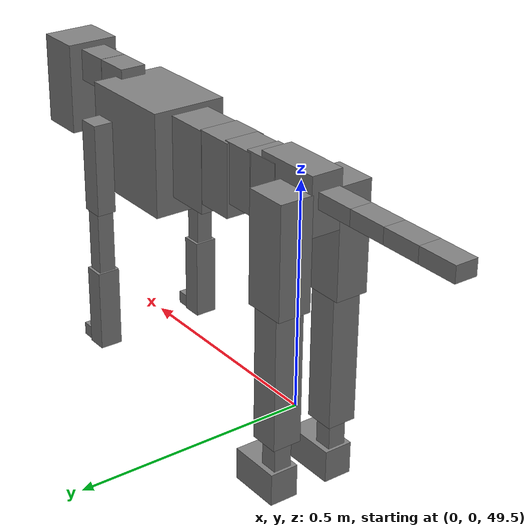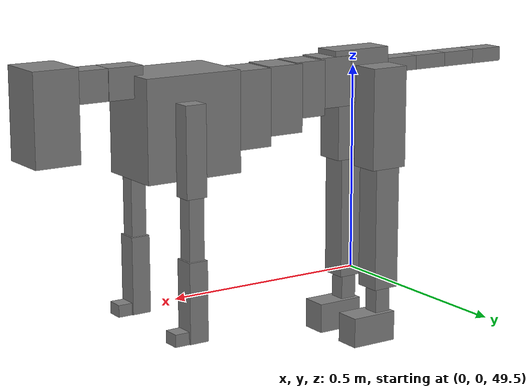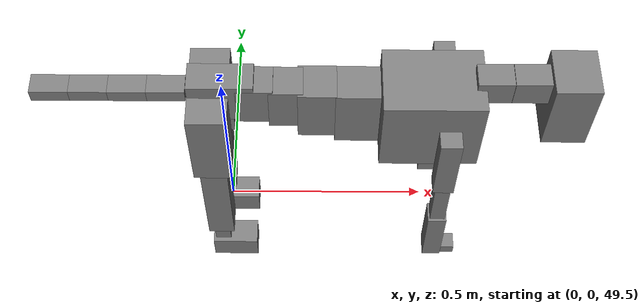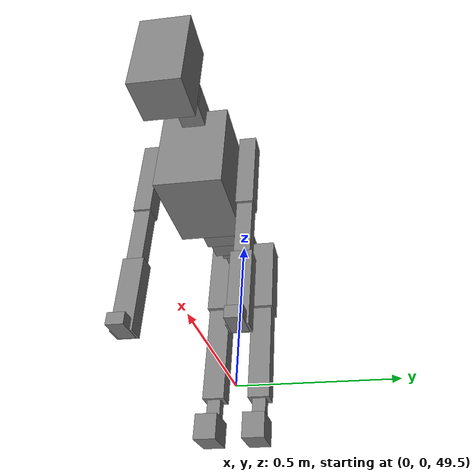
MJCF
<mujoco model="dog">

    <default>
        <joint armature="0.02" stiffness="1" damping="0.2" limited="true"/>
        <geom condim="3" friction="1 0.05 0.05" margin="0.01"/>
        <motor ctrllimited="true" ctrlrange="-1.0 1.0" forcelimited="true" gear="50"/>
    </default>

    <compiler inertiafromgeom="true" angle="radian"/>

    <option timestep="0.016" iterations="50" tolerance="1e-10" solver="Newton" jacobian="dense" cone="pyramidal"/>

    <size nconmax="20000" njmax="60000" nstack="5000000"/>
    <visual>
        <map force="0.1" zfar="30"/>
        <rgba haze="0.15 0.25 0.35 1"/>
        <quality shadowsize="2048"/>
        <global offwidth="800" offheight="800"/>
    </visual>

    <asset>
        <texture type="skybox" builtin="gradient" rgb1="0.3 0.5 0.7" rgb2="0 0 0" width="512" height="512"/>
        <texture name="texplane" type="2d" builtin="checker" rgb1=".2 .3 .4" rgb2=".1 0.15 0.2" width="512" height="512"
                 mark="cross" markrgb=".8 .8 .8"/>
        <texture name="texgeom" type="cube" builtin="flat" mark="cross" width="127" height="1278" rgb1="0.8 0.6 0.4"
                 rgb2="0.8 0.6 0.4" markrgb="1 1 1" random="0.01"/>

        <material name="matplane" reflectance="0.3" texture="texplane" texrepeat="1 1" texuniform="true"/>
        <material name="matgeom" texture="texgeom" texuniform="true" rgba="0.8 0.6 .4 1"/>
    </asset>

    <worldbody>
        <geom name="floor" pos="0 0 0" size="0 0 .25" type="plane" material="matplane" condim="3"/>

        <light directional="false" diffuse=".2 .2 .2" specular="0 0 0" pos="0 0 5" dir="0 0 -1" castshadow="false"/>
        <light mode="targetbodycom" target="torso" directional="false" diffuse=".8 .8 .8" specular="0.3 0.3 0.3"
               pos="0 0 4.0" dir="0 0 -1"/>

        <body name="root" pos="0 0 50">
            <freejoint name="root_1"/>
            <geom type="box" pos="0 0 -0.02" size="0.0774  0.0358  0.063" density="2030"/>

            <body name="spine1" pos="0.054 0 0">
                <joint name="spine1_y" axis="0 1 0" range="0 0.7" limited="true"/>
                <geom type="box" pos="0.02375 0 -0.03" size="0.04375  0.0375  0.05985" density="2030"/>

                <body name="spine2" pos="0.0612 0 0">
                    <joint name="spine2_y" axis="0 1 0" range="-0.15 0.15" limited="true"/>
                    <geom type="box" pos="0.03555  0  -0.04" size="0.04055  0.039  0.06615" density="2030"/>

                    <body name="spine3" pos="0.0730 0 0">
                        <joint name="spine3_y" axis="0 1 0" range="-0.15 0.15" limited="true"/>
                        <geom type="box" pos="0.03555  0  -0.057" size="0.04555  0.0445  0.081" density="2030"/>

                        <body name="spine4" pos="0.0780 0 0">
                            <joint name="spine4_y" axis="0 1 0" range="-0.15 0.15" limited="true"/>
                            <geom type="box" pos="0.05265  0  -0.07" size="0.05265  0.045  0.09135" density="2030"/>

                            <body name="torso" pos="0.1082 0 0">
                                <joint name="torso_y" axis="0 1 0" range="-0.15 0.15" limited="true"/>
                                <geom type="box" pos="0.11925  0  -0.085" size="0.11925  0.085  0.11745"
                                      density="2030"/>

                                <body name="neck1" pos="0.2160  0   0.0180">
                                    <joint name="neck1_y" axis="0 1 0" range="-1.2  -1" limited="true"/>
                                    <geom type="box" pos="0.0423  0  0" size="0.0423  0.03  0.036" density="2325"/>

                                    <body name="neck2" pos="0.0853  0  0">
                                        <joint name="neck2_y" axis="0 1 0" range="0.1  0" limited="true"/>
                                        <geom type="box" pos="0.0423  0  0" size="0.0423  0.03  0.036" density="2325"/>

                                        <body name="head" pos="0.0853  0  0">
                                            <joint name="head_y" axis="0 1 0" range="-0.3  -0.2" limited="true"/>
                                            <geom type="box" pos="0.0531  0  -0.055" size="0.0531  0.06  0.1044"
                                                  density="4030"/>

                                        </body>
                                    </body>
                                </body>

                                <body name="front_shoulder" pos="0.156  0   -0.0480">
                                    <joint name="front_shoulder_y" axis="0 1 0" range="-1 1.5" limited="true"/>
                                    <geom type="box" pos="0 0.13 -0.0771" size="0.0255  0.0218  0.1037" density="1158"/>
                                    <geom type="box" pos="0 -0.13 -0.0771" size="0.0255  0.0218  0.1037"
                                          density="1158"/>

                                    <body name="front_elbow" pos="0  0  -0.1542">
                                        <joint name="front_elbow_y" axis="0 1 0" range="-2 0" limited="true"/>
                                        <geom type="box" pos="0 0.13 -0.0905" size="0.0189  0.0193  0.0905"
                                              density="1081"/>
                                        <geom type="box" pos="0 -0.13 -0.0905" size="0.0189  0.0193  0.0905"
                                              density="1081"/>

                                        <body name="front_wrist" pos="0  0  -0.1809">
                                            <joint name="front_wrist_y" axis="0 1 0" range="-0.2 0" limited="true"/>
                                            <geom type="box" pos="0 0.13 -0.0800" size="0.0232  0.0257  0.0932"
                                                  density="1664"/>
                                            <geom type="box" pos="0 -0.13 -0.0800" size="0.0232  0.0257  0.0932"
                                                  density="1664"/>

                                            <body name="front_finger_end" pos="0  0  -0.1601">
                                                <joint name="front_finger_y" axis="0 1 0" range="-0.4 1"
                                                       limited="true"/>
                                                <geom type="box" pos="0.0206  0.13  0.0004"
                                                      size="0.0379  0.0206  0.0146" density="1515"/>
                                                <geom type="box" pos="0.0206  -0.13  0.0004"
                                                      size="0.0379  0.0206  0.0146" density="1515"/>

                                            </body>

                                        </body>
                                    </body>
                                </body>

                            </body>
                        </body>
                    </body>
                </body>
            </body>

            <body name="back_hip" pos="-0.03 0 -0.018">
                <joint name="back_hip_y" axis="0 1 0" range="-1.5 0.3" limited="true"/>
                <geom type="box" pos="0 0.07 -0.0992" size="0.0477  0.0374  0.1220" density="1154"/>
                <geom type="box" pos="0 -0.07 -0.0992" size="0.0477  0.0374  0.1220" density="1154"/>

                <body name="back_knee" pos="0  0  -0.1983">
                    <joint name="back_knee_y" axis="0 1 0" range="0 2.8" limited="true"/>
                    <geom type="box" pos="0 0.07 -0.1528" size="0.0336  0.0331  0.1683" density="1227"/>
                    <geom type="box" pos="0 -0.07 -0.1528" size="0.0336  0.0331  0.1683" density="1227"/>

                    <body name="back_ankle" pos="0  0  -0.3056">
                        <joint name="back_ankle_y" axis="0 1 0" range="-2.2 0" limited="true"/>
                        <geom type="box" pos="0 0.07 -0.0462" size="0.0204  0.0204  0.0575" density="1284"/>
                        <geom type="box" pos="0 -0.07 -0.0462" size="0.0204  0.0204  0.0575" density="1284"/>

                        <body name="back_toe_end" pos="0  0  -0.0924">
                            <joint name="back_toe_y" axis="0 1 0" range="-0.4 1" limited="true"/>
                            <geom type="box" pos="0.0325  0.07  -0.0215" size="0.0595  0.0325  0.0365" density="1515"/>
                            <geom type="box" pos="0.0325  -0.07  -0.0215" size="0.0595  0.0325  0.0365" density="1515"/>

                        </body>
                    </body>
                </body>
            </body>

            <body name="tail1" pos="-0.074 0 -0.006">
                <joint name="tail1_y" axis="0 1 0" range="-0.2 0.2" limited="true"/>
                <geom type="box" pos="-0.0536  0  0" size="0.045  0.025  0.0175" density="1587"/>

                <body name="tail2" pos="-0.09 0 0">
                    <joint name="tail2_y" axis="0 1 0" range="-0.2 0.2" limited="true"/>
                    <geom type="box" pos="-0.0536  0  0" size="0.045  0.025  0.0175" density="1587"/>

                    <body name="tail3" pos="-0.09 0 0">
                        <joint name="tail3_y" axis="0 1 0" range="-0.2 0.2" limited="true"/>
                        <geom type="box" pos="-0.0536  0  0" size="0.045  0.025  0.0175" density="1587"/>

                        <body name="tail4" pos="-0.09 0 0">
                            <joint name="tail4_y" axis="0 1 0" range="-0.2 0.2" limited="true"/>
                            <geom type="box" pos="-0.0536  0  0" size="0.045  0.025  0.0175" density="1587"/>

                        </body>
                    </body>
                </body>
            </body>
        </body>
    </worldbody>

    <actuator>
        <motor joint="spine1_y" forcerange="-150 150     "/>
        <motor joint="spine2_y" forcerange="-150 150     "/>
        <motor joint="spine3_y" forcerange="-150 150     "/>
        <motor joint="spine4_y" forcerange="-150 150     "/>
        <motor joint="torso_y" forcerange="-150 150     "/>
        <motor joint="neck1_y" forcerange="-100 100       "/>
        <motor joint="neck2_y" forcerange="-100 100       "/>
        <motor joint="head_y" forcerange="-150 150       "/>
        <motor joint="front_shoulder_y" forcerange="-121.44 123.99"/>
        <motor joint="front_elbow_y" forcerange="-123.49 116.66"/>
        <motor joint="front_wrist_y" forcerange="-82.70 123.11"/>
        <motor joint="front_finger_y" forcerange="-35.74 34.38"/>
        <motor joint="back_hip_y" forcerange="-373.36 325.73"/>
        <motor joint="back_knee_y" forcerange="-313.73 367.49"/>
        <motor joint="back_angle_y" forcerange="-154.75 72.01"/>
        <motor joint="back_toe_y" forcerange="-104.79 75.06"/>
        <motor joint="tail1_y" forcerange="-50 50     "/>
        <motor joint="tail2_y" forcerange="-50 50     "/>
        <motor joint="tail3_y" forcerange="-50 50     "/>
        <motor joint="tail4_y" forcerange="-50 50     "/>
    </actuator>
</mujoco>
